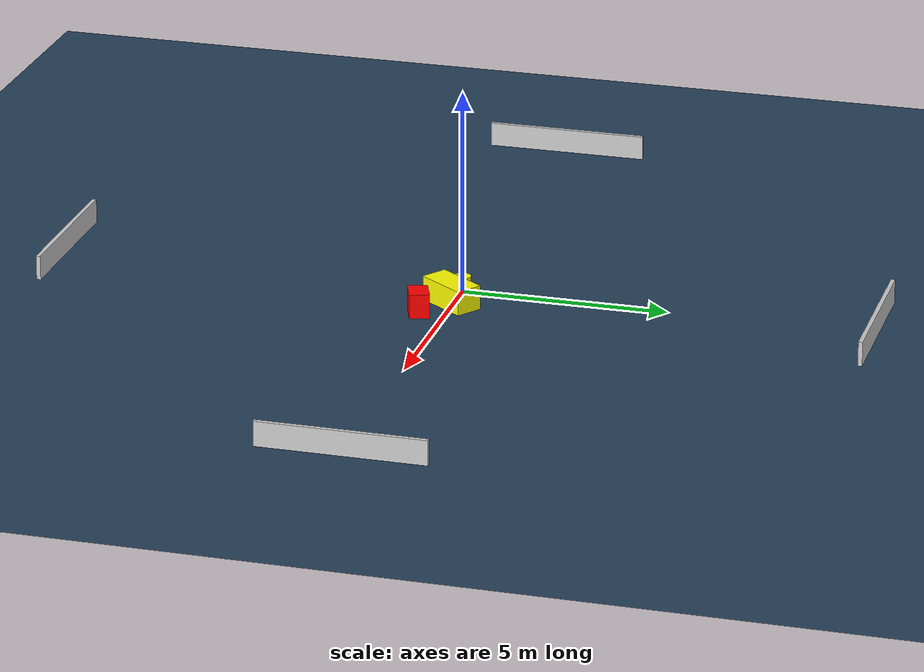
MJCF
<?xml version="1.0" ?>
<mujoco model="generated_environment">
  <option timestep="0.01" integrator="RK4" cone="elliptic"/>
  <default>
    <geom density="1"/>
  </default>
  <asset>
    <texture builtin="gradient" height="3072" name="skybox" rgb1="0.3 0.5 0.7" rgb2="0 0 0" type="skybox" width="512"/>
    <texture builtin="checker" height="300" name="groundplane" rgb1="0.2 0.3 0.4" rgb2="0.1 0.2 0.3" type="2d" width="300"/>
    <material name="groundplane" reflectance="0.2" texrepeat="5 5" texture="groundplane"/>
  </asset>
  <worldbody>
    <light dir="0 0 -1" directional="true" pos="0 0 1.5"/>
    <geom condim="3" friction="0.5 0.005 0.001" material="groundplane" name="floor" pos="0 0 0" size="0 0 0.05" type="plane"/>
    <body name="walls">
      <geom name="wall_1" condim="4" pos="-10.0 0.0 0.3" rgba="0.800000011920929 0.800000011920929 0.800000011920929 1.0" size="0.05 2.0 0.3" type="box"/>
      <geom name="wall_2" condim="4" pos="10.0 0.0 0.3" rgba="0.800000011920929 0.800000011920929 0.800000011920929 1.0" size="0.05 2.0 0.3" type="box"/>
      <geom name="wall_3" condim="4" pos="0.0 -10.0 0.3" rgba="0.800000011920929 0.800000011920929 0.800000011920929 1.0" size="2.0 0.05 0.3" type="box"/>
      <geom name="wall_4" condim="4" pos="0.0 10.0 0.3" rgba="0.800000011920929 0.800000011920929 0.800000011920929 1.0" size="2.0 0.05 0.3" type="box"/>
    </body>
    <body name="robot">
      <joint name="joint_x" type="slide" pos="0 0 0" axis="1 0 0"/>
      <joint name="joint_y" type="slide" pos="0 0 0" axis="0 1 0"/>
      <geom name="robot" type="cylinder" pos="0.0 0.0 0.2" size="0.2 0.2 0.0" mass="5.0" friction="1.0 0.005 0.0001" condim="4" rgba="1.0 1.0 0.0 1.0"/>
    </body>
    <body name="obstacle_1_movable">
      <geom name="obstacle_1_movable" condim="4" pos="0.8690003062548812 -0.040331229780949295 0.3" euler="0 0 324.515379435867" friction="0.0 0.005 0.001" rgba="1.0 1.0 0.0 1.0" size="0.334233763954363 0.6620722205682941 0.3" type="box" mass="0.1"/>
      <joint type="free"/>
    </body>
    <body name="obstacle_2_static">
      <geom name="obstacle_2_static" condim="4" pos="1.6477861956513349 -0.6265846049646303 0.3" euler="0 0 20.436376872688086" friction="0.0 0.005 0.001" rgba="1.0 0.0 0.0 1.0" size="0.309397449034562 0.24347484621531773 0.3" type="box"/>
    </body>
  </worldbody>
  <actuator>
    <motor name="actuator_x" joint="joint_x" gear="1" ctrlrange="-1 1"/>
    <motor name="actuator_y" joint="joint_y" gear="1" ctrlrange="-1 1"/>
  </actuator>
</mujoco>
